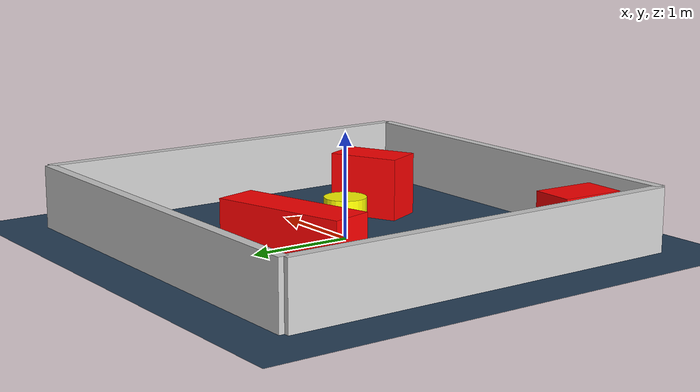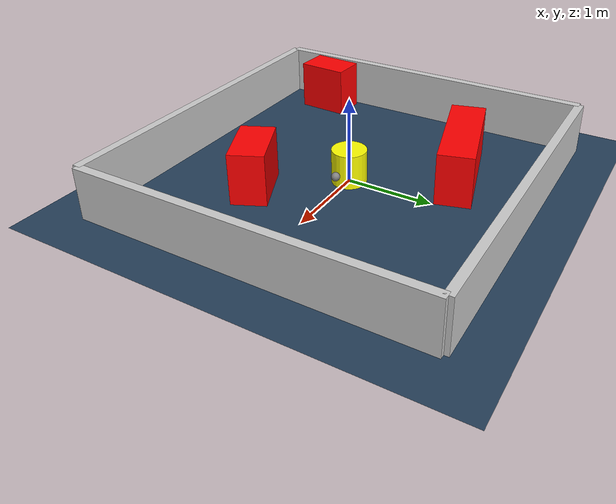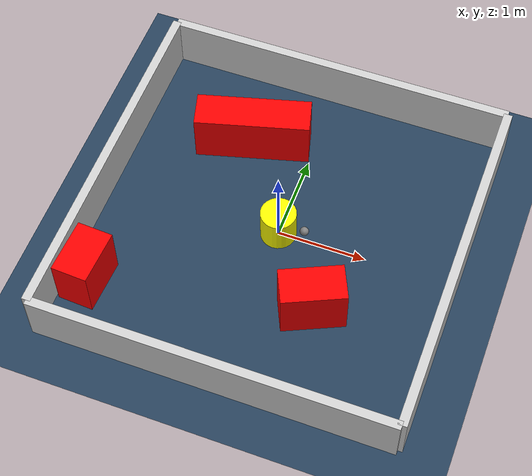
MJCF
<?xml version="1.0" ?>
<mujoco model="generated_environment">
  <option timestep="0.01" integrator="RK4" cone="elliptic"/>
  <default>
    <geom density="1"/>
  </default>
  <asset>
    <texture builtin="gradient" height="3072" rgb1="0.3 0.5 0.7" rgb2="0 0 0" type="skybox" width="512"/>
    <texture builtin="checker" height="300" mark="edge" markrgb="0.8 0.8 0.8" name="groundplane" rgb1="0.2 0.3 0.4" rgb2="0.1 0.2 0.3" type="2d" width="300"/>
    <material name="groundplane" reflectance="0.2" texrepeat="5 5" texture="groundplane" texuniform="true"/>
    <material name="robot" rgba="0.0 1.0 0.0 1"/>
  </asset>
  <worldbody>
    <light dir="0 0 -1" directional="true" pos="0 0 1.5"/>
    <geom condim="4" friction="1.0 0.005 0.001" material="groundplane" name="floor" size="0 0 0.05" type="plane"/>
    <body name="walls">
      <geom name="wall_1" condim="4" pos="-2.0 0.0 0.3" rgba="0.800000011920929 0.800000011920929 0.800000011920929 1.0" size="0.05 2.0 0.3" type="box"/>
      <geom name="wall_2" condim="4" pos="2.0 0.0 0.3" rgba="0.800000011920929 0.800000011920929 0.800000011920929 1.0" size="0.05 2.0 0.3" type="box"/>
      <geom name="wall_3" condim="4" pos="0.0 -2.0 0.3" rgba="0.800000011920929 0.800000011920929 0.800000011920929 1.0" size="2.0 0.05 0.3" type="box"/>
      <geom name="wall_4" condim="4" pos="0.0 2.0 0.3" rgba="0.800000011920929 0.800000011920929 0.800000011920929 1.0" size="2.0 0.05 0.3" type="box"/>
    </body>
    <body name="robot">
      <joint name="joint_x" type="slide" pos="0 0 0" axis="1 0 0"/>
      <joint name="joint_y" type="slide" pos="0 0 0" axis="0 1 0"/>
      <geom name="robot" type="sphere" pos="0.3 0.0 0.2" size="0.05" mass="5." friction="1.0 0.005 0.0001" condim="4" rgba="0.5 0.5 0.5 1.0"/>
      <site name="sensor_ball"/>
    </body>
    <body name="obstacle_movable_1">
      <geom name="obstacle_movable_1" condim="4" pos="0.0 0.0 0.2" euler="0 0 0.0" friction="1.0 0.005 0.001" rgba="1.0 1.0 0.0 1.0" size="0.2 0.2 0.0" type="cylinder" mass="0.1"/>
      <joint type="free"/>
    </body>
    <body name="obstacle_2_static">
      <geom name="obstacle_2_static" condim="4" pos="-0.68859976725307 1.048347631919018 0.3" euler="0 0 15.409715596712715" friction="1.0 0.005 0.001" rgba="1 0 0 1" size="0.6469460610194009 0.2 0.3" type="box"/>
    </body>
    <body name="obstacle_3_static">
      <geom name="obstacle_3_static" condim="4" pos="0.6742327803323087 -0.8151849345145212 0.3" euler="0 0 204.88514445931887" friction="1.0 0.005 0.001" rgba="1 0 0 1" size="0.3497262583820724 0.2 0.3" type="box"/>
    </body>
    <body name="obstacle_4_static">
      <geom name="obstacle_4_static" condim="4" pos="-1.7086706316651255 -1.277398897719765 0.3" euler="0 0 267.28587883535863" friction="1.0 0.005 0.001" rgba="1 0 0 1" size="0.30392222158829946 0.2 0.3" type="box"/>
    </body>
  </worldbody>
  <actuator>
    <motor name="actuator_x" joint="joint_x" gear="1" ctrlrange="-1 1"/>
    <motor name="actuator_y" joint="joint_y" gear="1" ctrlrange="-1 1"/>
  </actuator>
</mujoco>
